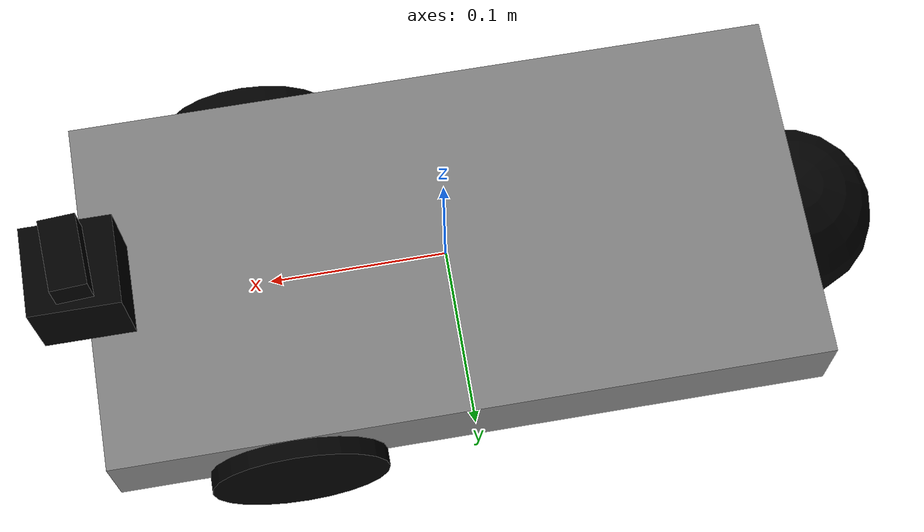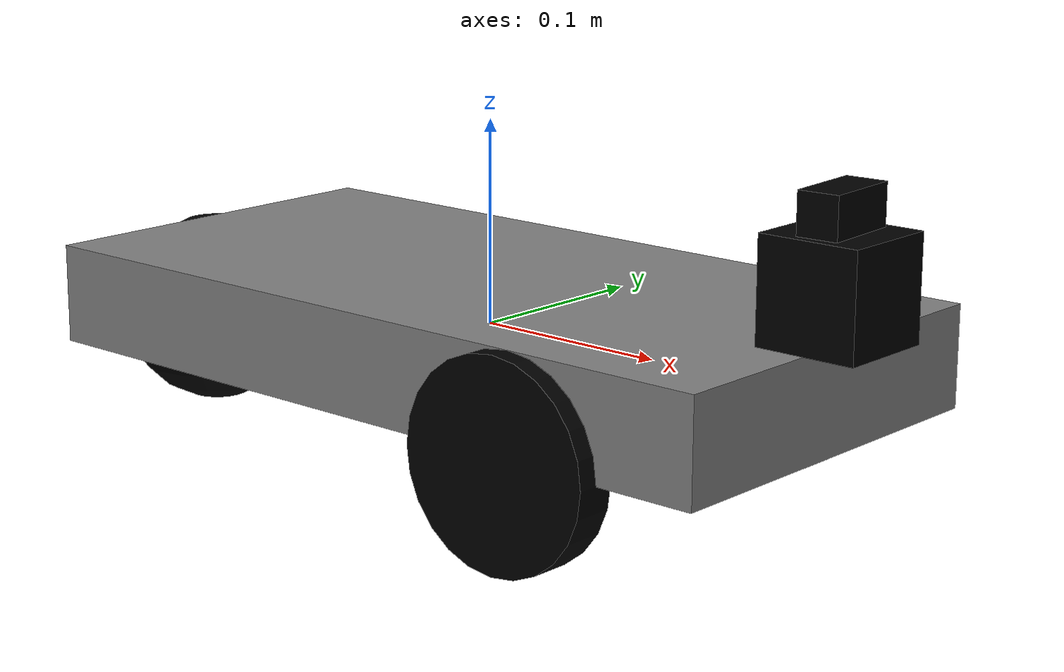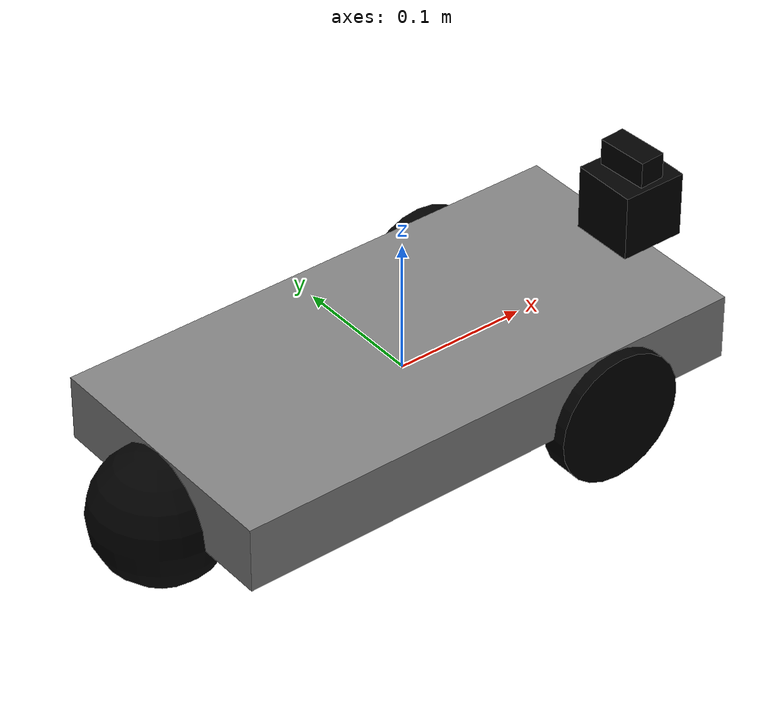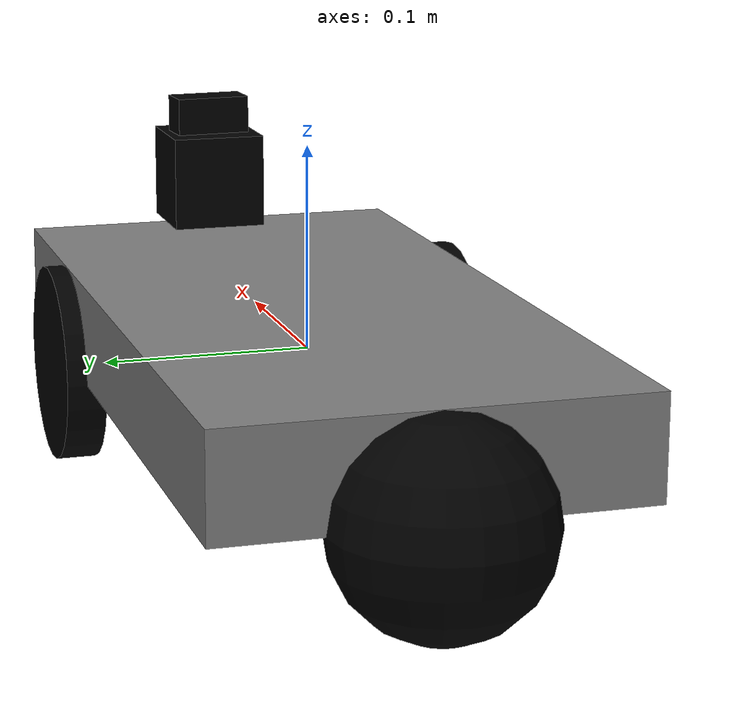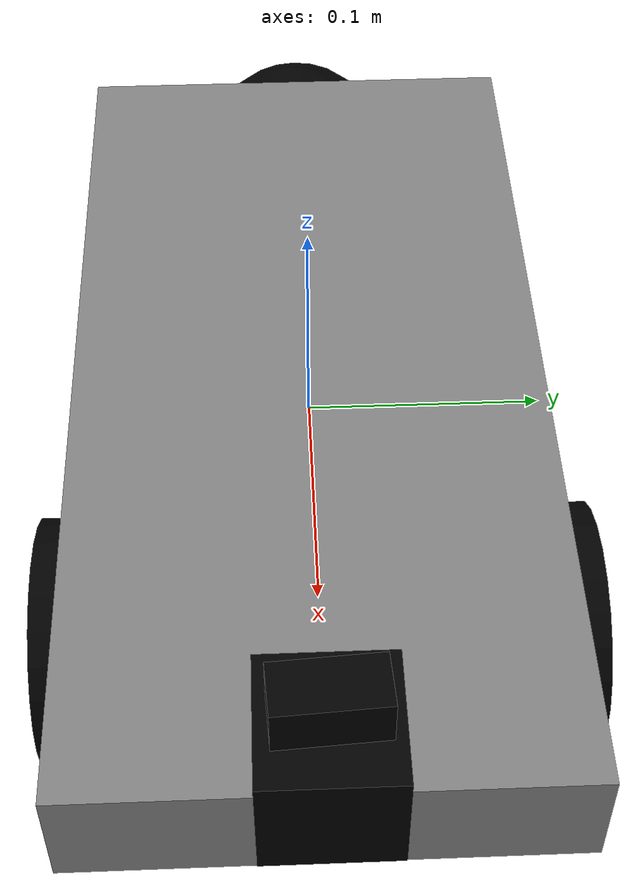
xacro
<?xml version="1.0"?>
<robot name="ros_car" xmlns:xacro="http://ros.org/wiki/xacro">

  <!-- Local Params -->
  <xacro:property name="chassis_height" value="0.05"/>
  <xacro:property name="base_length" value="0.4"/>
  <xacro:property name="base_width" value="0.2"/>
  <xacro:property name="wheel_radius" value="0.05"/>
  <xacro:property name="wheel_width" value="0.02"/>
  <xacro:property name="wheel_separation" value="0.3"/>

  <!-- Materials -->
  <material name="black">
    <color rgba="0.0 0.0 0.0 1.0"/>
  </material>

  <material name="grey">
    <color rgba="0.5 0.5 0.5 1.0"/>
  </material>

  <!-- Main Loom -->
  <link name="base_link">
    <visual>
      <geometry>
        <box size="${base_length} ${base_width} ${chassis_height}"/>
      </geometry>
      <material name="grey"/>
    </visual>
    <collision>
      <geometry>
        <box size="${base_length} ${base_width} ${chassis_height}"/>
      </geometry>
    </collision>
    <inertial>
      <mass value="2.0"/>
      <inertia ixx="0.1" ixy="0.0" ixz="0.0"
               iyy="0.1" iyz="0.0" izz="0.1"/>
    </inertial>
  </link>

  <!-- Scanner -->
  <link name="laser_link">
    <visual>
      <geometry>
        <box size="0.05 0.05 0.05"/>
      </geometry>
      <material name="black"/>
    </visual>
    <collision>
      <geometry>
        <box size="0.05 0.05 0.05"/>
      </geometry>
    </collision>
    <inertial>
      <mass value="0.05"/>
      <inertia ixx="0.0001" ixy="0.0" ixz="0.0"
               iyy="0.0001" iyz="0.0" izz="0.0001"/>
    </inertial>
  </link>

  <joint name="joint_laser_link" type="fixed">
    <parent link="base_link"/>
    <child link="laser_link"/>
    <origin xyz="0.2 0 0.05" rpy="0 0 0"/>
  </joint>

  <!-- Onboard Camera -->
  <link name="camera_link">
    <visual>
      <geometry>
        <box size="0.02 0.04 0.03"/>
      </geometry>
      <material name="black"/>
    </visual>
    <collision>
      <geometry>
        <box size="0.02 0.04 0.03"/>
      </geometry>
    </collision>
    <inertial>
      <mass value="0.02"/>
      <inertia ixx="0.00001" ixy="0.0" ixz="0.0"
               iyy="0.00001" iyz="0.0" izz="0.00001"/>
    </inertial>
  </link>

  <joint name="joint_camera_link" type="fixed">
    <parent link="base_link"/>
    <child link="camera_link"/>
    <origin xyz="0.2 0 0.08" rpy="0 0.00 0.06"/>
  </joint>

  <!-- Left Wheel -->
  <link name="wheel_left">
    <visual>
      <geometry>
        <cylinder radius="${wheel_radius}" length="${wheel_width}"/>
      </geometry>
      <material name="black"/>
      <origin rpy="${pi/2} 0 0"/>
    </visual>
    <collision>
      <geometry>
        <cylinder radius="${wheel_radius}" length="${wheel_width}"/>
      </geometry>
      <origin rpy="${pi/2} 0 0"/>
    </collision>
    <inertial>
      <mass value="0.1"/>
      <inertia ixx="0.001" ixy="0.0" ixz="0.0"
              iyy="0.001" iyz="0.0" izz="0.001"/>
    </inertial>
  </link>

  <joint name="joint_wheel_left" type="continuous">
    <parent link="base_link"/>
    <child link="wheel_left"/>
    <origin xyz="${base_length/4} ${wheel_separation/3} -${chassis_height/2}" rpy="0 0 0"/>
    <dynamics damping="0.1" friction="0.1"/>
    <axis xyz="0 1 0"/>
  </joint>

  <!-- Right Wheel -->
  <link name="wheel_right">
    <visual>
      <geometry>
        <cylinder radius="${wheel_radius}" length="${wheel_width}"/>
      </geometry>
      <material name="black"/>
      <origin rpy="${pi/2} 0 0"/>
    </visual>
    <collision>
      <geometry>
        <cylinder radius="${wheel_radius}" length="${wheel_width}"/>
      </geometry>
      <origin rpy="${pi/2} 0 0"/>
    </collision>
    <inertial>
      <mass value="0.1"/>
      <inertia ixx="0.001" ixy="0.0" ixz="0.0"
              iyy="0.001" iyz="0.0" izz="0.001"/>
    </inertial>
  </link>

  <joint name="joint_wheel_right" type="continuous">
    <parent link="base_link"/>
    <child link="wheel_right"/>
    <origin xyz="${base_length/4} -${wheel_separation/3} -${chassis_height/2}" rpy="0 0 0"/>
    <dynamics damping="0.1" friction="0.1"/>
    <axis xyz="0 1 0"/>
  </joint>

  <!-- Passive Back Wheels (caster) -->
  <link name="caster_wheel">
    <visual>
      <geometry>
        <sphere radius="0.05"/>
      </geometry>
      <material name="black"/>
    </visual>
    <collision>
      <geometry>
        <sphere radius="0.05"/>
      </geometry>
    </collision>
    <inertial>
      <mass value="0.05"/>
      <inertia ixx="0.0001" ixy="0.0" ixz="0.0"
               iyy="0.0001" iyz="0.0" izz="0.0001"/>
    </inertial>
  </link>

  <joint name="joint_caster" type="fixed">
    <parent link="base_link"/>
    <child link="caster_wheel"/>
    <origin xyz="-${base_length/2} 0 -0.025" rpy="0 0 0"/>
  </joint>

  <!-- Plugins -->
  <gazebo reference="laser_link">
    <sensor type="ray" name="laser_sensor">
      <alwaysOn>true</alwaysOn>						      <!-- Keep sensor active -->
      <update_rate>20</update_rate>					    <!-- Publish at 20 Hz -->
      <visualize>true</visualize>						    <!-- Show beams in Gazebo -->
      <topicName>scan</topicName>						    <!-- ROS topic for LaserScan -->
      <pose>0 0 0 0 0 0</pose>						      <!-- Sensor pose relative to link -->
      <ray>
        <scan>
          <horizontal>
            <samples>360</samples>					    <!-- Number of beams -->
            <resolution>1</resolution>				  <!-- Subdivisions between beams -->
            <min_angle>-3.1416</min_angle>      <!-- -180° rads -->
            <max_angle>3.1416</max_angle>       <!-- +180° rads -->
          </horizontal>
        </scan>
        <range>
          <min>0.12</min>						            <!-- Minimum detect distance (m) -->
          <max>2.0</max>						            <!-- Maximum detect distance (m) -->
          <resolution>0.01</resolution>				  <!-- Range resolution (m) -->
        </range>
        <noise>
          <type>gaussian</type>					        <!-- Noise model type -->
          <mean>0.0</mean>						          <!-- Mean of noise -->
          <stddev>0.01</stddev>					        <!-- Standard deviation of noise -->
        </noise>
      </ray>
      <plugin name="ray_sensor" filename="libgazebo_ros_ray_sensor.so">
        <ros>
          <namespace>/</namespace>
          <remapping>~/out:=scan</remapping>
        </ros>
        <output_type>sensor_msgs/LaserScan</output_type>
        <frame_name>laser_link</frame_name>
      </plugin>
    </sensor>
  </gazebo>

  <gazebo reference="camera_link">
    <sensor type="camera" name="camera">
      <alwaysOn>true</alwaysOn>
      <update_rate>10</update_rate>
      <visualize>false</visualize>
      <camera>
        <horizontal_fov>1.047</horizontal_fov>
        <image>
          <width>640</width>
          <height>480</height>
          <format>R8G8B8</format>
        </image>
        <clip>
          <near>0.05</near>
          <far>20</far>
        </clip>
      </camera>
      <plugin name="camera_controller" filename="libgazebo_ros_camera.so">
        <ros>
          <namespace>/</namespace>
          <remapping>image_raw:=/camera/image_raw</remapping>
          <remapping>camera_info:=/camera/camera_info</remapping>
        </ros>
        <camera_name>camera</camera_name>
        <frame_name>camera_link</frame_name>
      </plugin>
    </sensor>
  </gazebo>

  <gazebo>
    <plugin name="diff_drive_controller" filename="libgazebo_ros_diff_drive.so">
      <ros>
        <namespace>/</namespace>
        <remapping>odom:=/odom</remapping>
        <remapping>cmd_vel:=/cmd_vel</remapping>
      </ros>
      <publish_odom>true</publish_odom>
      <publish_odom_tf>true</publish_odom_tf>
      <publish_wheel_tf>false</publish_wheel_tf>
      <publish_wheel_joint_state>true</publish_wheel_joint_state>
      <odometry_topic>odom</odometry_topic>
      <command_topic>cmd_vel</command_topic>
      <odometry_frame>odom</odometry_frame>
      <robot_base_frame>base_link</robot_base_frame>
      <command_timeout>1.0</command_timeout>
      <wheel_torque>5.0</wheel_torque>
      <wheel_acceleration>0.0</wheel_acceleration>
      <wheel_diameter>${2 * wheel_radius}</wheel_diameter>
      <wheel_separation>${wheel_separation}</wheel_separation>
      <left_joint>joint_wheel_left</left_joint>
      <right_joint>joint_wheel_right</right_joint>
      <update_rate>60</update_rate>
    </plugin>
  </gazebo>
</robot>
